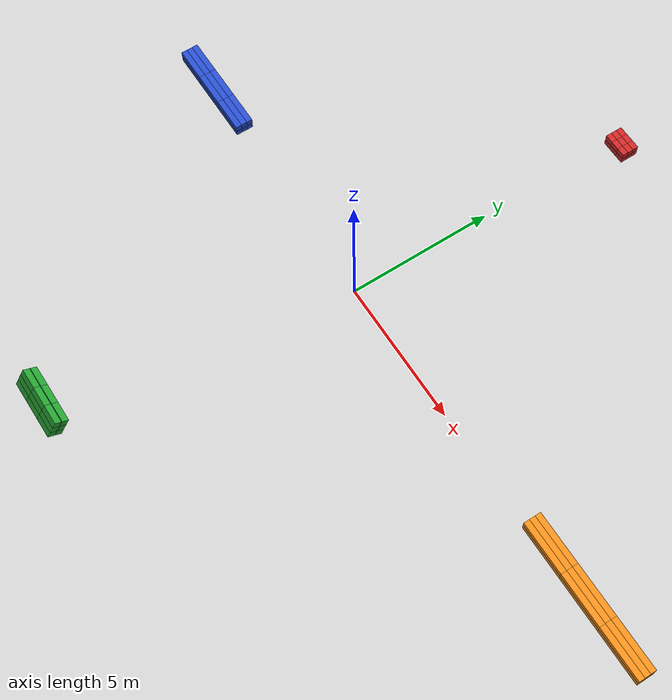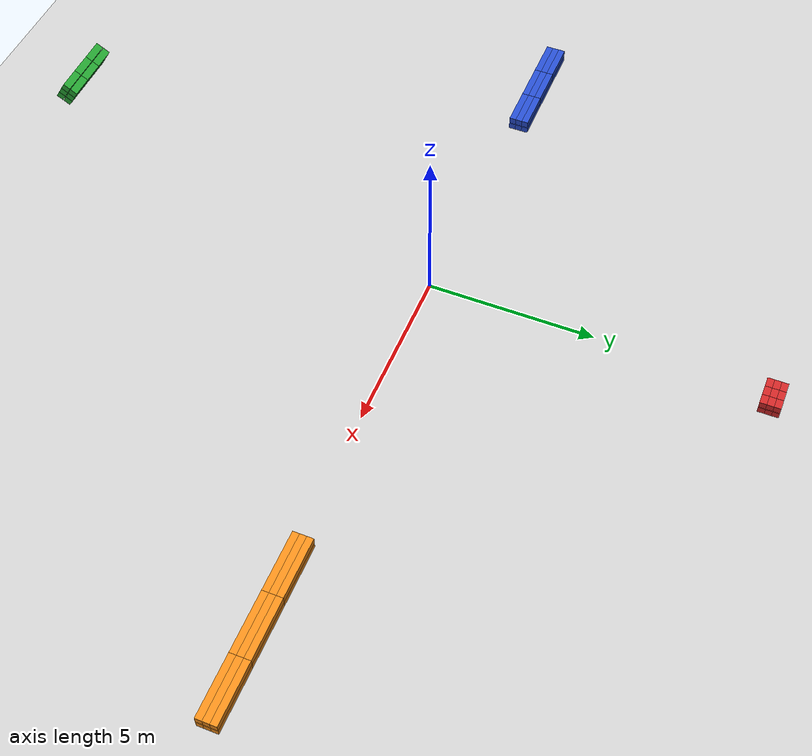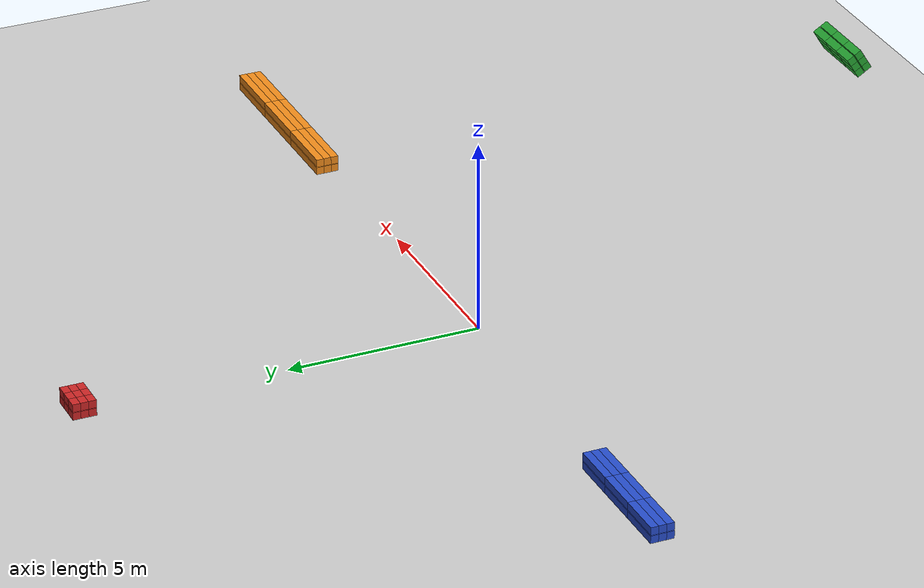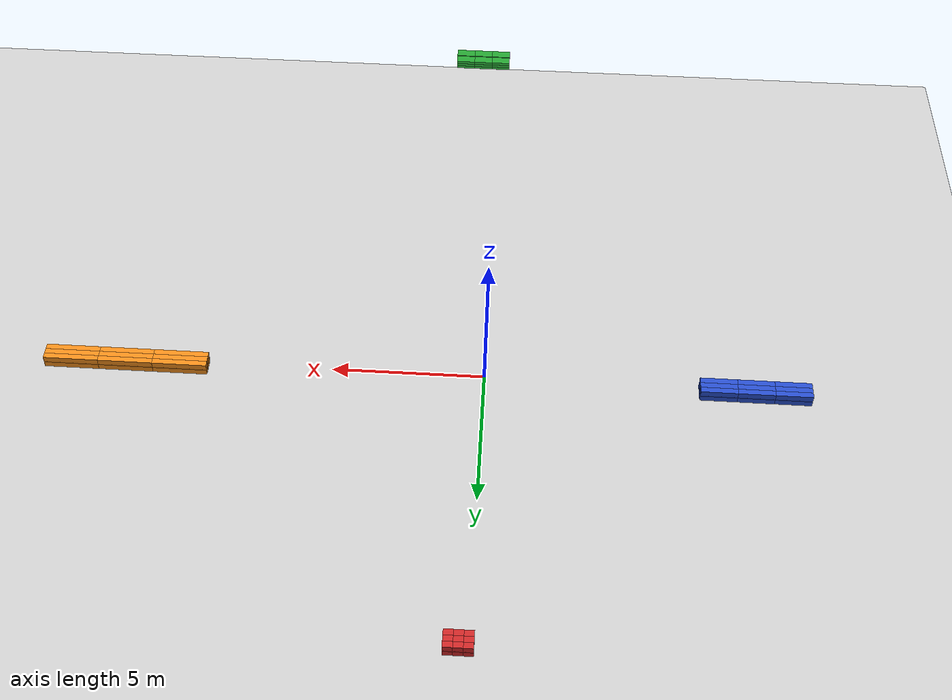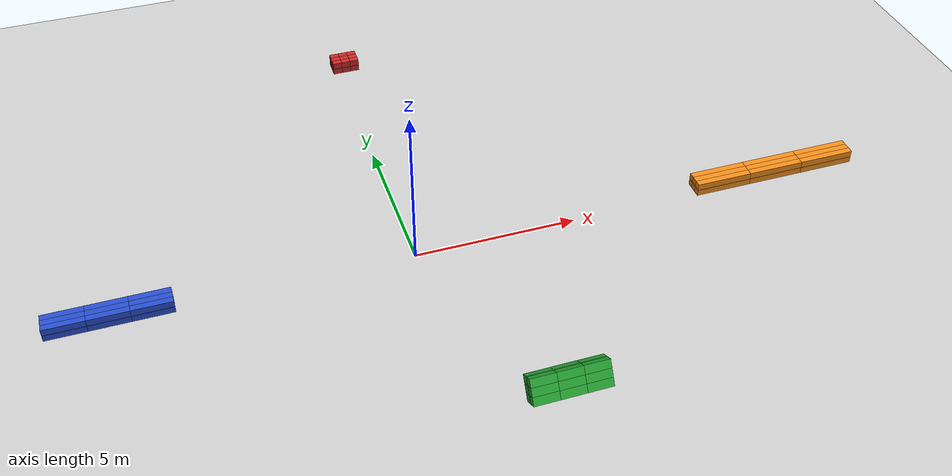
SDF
<?xml version="1.0" encoding="utf-8"?>
<!-- |    This document was autogenerated by xacro from challenge2.world.xacro         | -->
<!-- |    EDITING THIS FILE BY HAND IS NOT RECOMMENDED                                 | -->
<sdf version="1.4" xmlns:xacro="http://www.ros.org/wiki/xacro">
  <world name="default">
    <include>
      <uri>model://ground_plane</uri>
    </include>
    <include>
      <uri>model://sun</uri>
    </include>
    <model name="1.pile">
      <pose>10 0 0 0 0 0</pose>
      <self_collide>true</self_collide>
      <link name="0.brick.brick">
        <pose>0.0 0.0 0.1 0 0 0</pose>
        <inertial>
          <mass>2.0</mass>
          <inertia>
            <ixx>0.0133333333333</ixx>
            <ixy>0</ixy>
            <ixz>0</ixz>
            <iyy>0.546666666667</iyy>
            <iyz>0</iyz>
            <izz>0.546666666667</izz>
          </inertia>
        </inertial>
        <visual name="visual">
          <material>
            <script>
              <uri>gazebo.material</uri>
              <name>Gazebo/Orange</name>
            </script>
          </material>
          <geometry>
            <box>
              <size>1.8 0.2 0.2</size>
            </box>
          </geometry>
        </visual>
        <collision name="0.brick.brick">
          <geometry>
            <box>
              <size>1.8 0.2 0.2</size>
            </box>
          </geometry>
        </collision>
      </link>
      <link name="1.brick.brick">
        <pose>0.0 0.0 0.32 0 0 0</pose>
        <inertial>
          <mass>2.0</mass>
          <inertia>
            <ixx>0.0133333333333</ixx>
            <ixy>0</ixy>
            <ixz>0</ixz>
            <iyy>0.546666666667</iyy>
            <iyz>0</iyz>
            <izz>0.546666666667</izz>
          </inertia>
        </inertial>
        <visual name="visual">
          <material>
            <script>
              <uri>gazebo.material</uri>
              <name>Gazebo/Orange</name>
            </script>
          </material>
          <geometry>
            <box>
              <size>1.8 0.2 0.2</size>
            </box>
          </geometry>
        </visual>
        <collision name="1.brick.brick">
          <geometry>
            <box>
              <size>1.8 0.2 0.2</size>
            </box>
          </geometry>
        </collision>
      </link>
      <link name="2.brick.brick">
        <pose>0.0 0.2 0.1 0 0 0</pose>
        <inertial>
          <mass>2.0</mass>
          <inertia>
            <ixx>0.0133333333333</ixx>
            <ixy>0</ixy>
            <ixz>0</ixz>
            <iyy>0.546666666667</iyy>
            <iyz>0</iyz>
            <izz>0.546666666667</izz>
          </inertia>
        </inertial>
        <visual name="visual">
          <material>
            <script>
              <uri>gazebo.material</uri>
              <name>Gazebo/Orange</name>
            </script>
          </material>
          <geometry>
            <box>
              <size>1.8 0.2 0.2</size>
            </box>
          </geometry>
        </visual>
        <collision name="2.brick.brick">
          <geometry>
            <box>
              <size>1.8 0.2 0.2</size>
            </box>
          </geometry>
        </collision>
      </link>
      <link name="3.brick.brick">
        <pose>0.0 0.2 0.32 0 0 0</pose>
        <inertial>
          <mass>2.0</mass>
          <inertia>
            <ixx>0.0133333333333</ixx>
            <ixy>0</ixy>
            <ixz>0</ixz>
            <iyy>0.546666666667</iyy>
            <iyz>0</iyz>
            <izz>0.546666666667</izz>
          </inertia>
        </inertial>
        <visual name="visual">
          <material>
            <script>
              <uri>gazebo.material</uri>
              <name>Gazebo/Orange</name>
            </script>
          </material>
          <geometry>
            <box>
              <size>1.8 0.2 0.2</size>
            </box>
          </geometry>
        </visual>
        <collision name="3.brick.brick">
          <geometry>
            <box>
              <size>1.8 0.2 0.2</size>
            </box>
          </geometry>
        </collision>
      </link>
      <link name="4.brick.brick">
        <pose>0.0 0.4 0.1 0 0 0</pose>
        <inertial>
          <mass>2.0</mass>
          <inertia>
            <ixx>0.0133333333333</ixx>
            <ixy>0</ixy>
            <ixz>0</ixz>
            <iyy>0.546666666667</iyy>
            <iyz>0</iyz>
            <izz>0.546666666667</izz>
          </inertia>
        </inertial>
        <visual name="visual">
          <material>
            <script>
              <uri>gazebo.material</uri>
              <name>Gazebo/Orange</name>
            </script>
          </material>
          <geometry>
            <box>
              <size>1.8 0.2 0.2</size>
            </box>
          </geometry>
        </visual>
        <collision name="4.brick.brick">
          <geometry>
            <box>
              <size>1.8 0.2 0.2</size>
            </box>
          </geometry>
        </collision>
      </link>
      <link name="5.brick.brick">
        <pose>0.0 0.4 0.32 0 0 0</pose>
        <inertial>
          <mass>2.0</mass>
          <inertia>
            <ixx>0.0133333333333</ixx>
            <ixy>0</ixy>
            <ixz>0</ixz>
            <iyy>0.546666666667</iyy>
            <iyz>0</iyz>
            <izz>0.546666666667</izz>
          </inertia>
        </inertial>
        <visual name="visual">
          <material>
            <script>
              <uri>gazebo.material</uri>
              <name>Gazebo/Orange</name>
            </script>
          </material>
          <geometry>
            <box>
              <size>1.8 0.2 0.2</size>
            </box>
          </geometry>
        </visual>
        <collision name="5.brick.brick">
          <geometry>
            <box>
              <size>1.8 0.2 0.2</size>
            </box>
          </geometry>
        </collision>
      </link>
      <link name="6.brick.brick">
        <pose>1.8 0.0 0.1 0 0 0</pose>
        <inertial>
          <mass>2.0</mass>
          <inertia>
            <ixx>0.0133333333333</ixx>
            <ixy>0</ixy>
            <ixz>0</ixz>
            <iyy>0.546666666667</iyy>
            <iyz>0</iyz>
            <izz>0.546666666667</izz>
          </inertia>
        </inertial>
        <visual name="visual">
          <material>
            <script>
              <uri>gazebo.material</uri>
              <name>Gazebo/Orange</name>
            </script>
          </material>
          <geometry>
            <box>
              <size>1.8 0.2 0.2</size>
            </box>
          </geometry>
        </visual>
        <collision name="6.brick.brick">
          <geometry>
            <box>
              <size>1.8 0.2 0.2</size>
            </box>
          </geometry>
        </collision>
      </link>
      <link name="7.brick.brick">
        <pose>1.8 0.0 0.32 0 0 0</pose>
        <inertial>
          <mass>2.0</mass>
          <inertia>
            <ixx>0.0133333333333</ixx>
            <ixy>0</ixy>
            <ixz>0</ixz>
            <iyy>0.546666666667</iyy>
            <iyz>0</iyz>
            <izz>0.546666666667</izz>
          </inertia>
        </inertial>
        <visual name="visual">
          <material>
            <script>
              <uri>gazebo.material</uri>
              <name>Gazebo/Orange</name>
            </script>
          </material>
          <geometry>
            <box>
              <size>1.8 0.2 0.2</size>
            </box>
          </geometry>
        </visual>
        <collision name="7.brick.brick">
          <geometry>
            <box>
              <size>1.8 0.2 0.2</size>
            </box>
          </geometry>
        </collision>
      </link>
      <link name="8.brick.brick">
        <pose>1.8 0.2 0.1 0 0 0</pose>
        <inertial>
          <mass>2.0</mass>
          <inertia>
            <ixx>0.0133333333333</ixx>
            <ixy>0</ixy>
            <ixz>0</ixz>
            <iyy>0.546666666667</iyy>
            <iyz>0</iyz>
            <izz>0.546666666667</izz>
          </inertia>
        </inertial>
        <visual name="visual">
          <material>
            <script>
              <uri>gazebo.material</uri>
              <name>Gazebo/Orange</name>
            </script>
          </material>
          <geometry>
            <box>
              <size>1.8 0.2 0.2</size>
            </box>
          </geometry>
        </visual>
        <collision name="8.brick.brick">
          <geometry>
            <box>
              <size>1.8 0.2 0.2</size>
            </box>
          </geometry>
        </collision>
      </link>
      <link name="9.brick.brick">
        <pose>1.8 0.2 0.32 0 0 0</pose>
        <inertial>
          <mass>2.0</mass>
          <inertia>
            <ixx>0.0133333333333</ixx>
            <ixy>0</ixy>
            <ixz>0</ixz>
            <iyy>0.546666666667</iyy>
            <iyz>0</iyz>
            <izz>0.546666666667</izz>
          </inertia>
        </inertial>
        <visual name="visual">
          <material>
            <script>
              <uri>gazebo.material</uri>
              <name>Gazebo/Orange</name>
            </script>
          </material>
          <geometry>
            <box>
              <size>1.8 0.2 0.2</size>
            </box>
          </geometry>
        </visual>
        <collision name="9.brick.brick">
          <geometry>
            <box>
              <size>1.8 0.2 0.2</size>
            </box>
          </geometry>
        </collision>
      </link>
      <link name="10.brick.brick">
        <pose>1.8 0.4 0.1 0 0 0</pose>
        <inertial>
          <mass>2.0</mass>
          <inertia>
            <ixx>0.0133333333333</ixx>
            <ixy>0</ixy>
            <ixz>0</ixz>
            <iyy>0.546666666667</iyy>
            <iyz>0</iyz>
            <izz>0.546666666667</izz>
          </inertia>
        </inertial>
        <visual name="visual">
          <material>
            <script>
              <uri>gazebo.material</uri>
              <name>Gazebo/Orange</name>
            </script>
          </material>
          <geometry>
            <box>
              <size>1.8 0.2 0.2</size>
            </box>
          </geometry>
        </visual>
        <collision name="10.brick.brick">
          <geometry>
            <box>
              <size>1.8 0.2 0.2</size>
            </box>
          </geometry>
        </collision>
      </link>
      <link name="11.brick.brick">
        <pose>1.8 0.4 0.32 0 0 0</pose>
        <inertial>
          <mass>2.0</mass>
          <inertia>
            <ixx>0.0133333333333</ixx>
            <ixy>0</ixy>
            <ixz>0</ixz>
            <iyy>0.546666666667</iyy>
            <iyz>0</iyz>
            <izz>0.546666666667</izz>
          </inertia>
        </inertial>
        <visual name="visual">
          <material>
            <script>
              <uri>gazebo.material</uri>
              <name>Gazebo/Orange</name>
            </script>
          </material>
          <geometry>
            <box>
              <size>1.8 0.2 0.2</size>
            </box>
          </geometry>
        </visual>
        <collision name="11.brick.brick">
          <geometry>
            <box>
              <size>1.8 0.2 0.2</size>
            </box>
          </geometry>
        </collision>
      </link>
      <link name="12.brick.brick">
        <pose>3.6 0.0 0.1 0 0 0</pose>
        <inertial>
          <mass>2.0</mass>
          <inertia>
            <ixx>0.0133333333333</ixx>
            <ixy>0</ixy>
            <ixz>0</ixz>
            <iyy>0.546666666667</iyy>
            <iyz>0</iyz>
            <izz>0.546666666667</izz>
          </inertia>
        </inertial>
        <visual name="visual">
          <material>
            <script>
              <uri>gazebo.material</uri>
              <name>Gazebo/Orange</name>
            </script>
          </material>
          <geometry>
            <box>
              <size>1.8 0.2 0.2</size>
            </box>
          </geometry>
        </visual>
        <collision name="12.brick.brick">
          <geometry>
            <box>
              <size>1.8 0.2 0.2</size>
            </box>
          </geometry>
        </collision>
      </link>
      <link name="13.brick.brick">
        <pose>3.6 0.0 0.32 0 0 0</pose>
        <inertial>
          <mass>2.0</mass>
          <inertia>
            <ixx>0.0133333333333</ixx>
            <ixy>0</ixy>
            <ixz>0</ixz>
            <iyy>0.546666666667</iyy>
            <iyz>0</iyz>
            <izz>0.546666666667</izz>
          </inertia>
        </inertial>
        <visual name="visual">
          <material>
            <script>
              <uri>gazebo.material</uri>
              <name>Gazebo/Orange</name>
            </script>
          </material>
          <geometry>
            <box>
              <size>1.8 0.2 0.2</size>
            </box>
          </geometry>
        </visual>
        <collision name="13.brick.brick">
          <geometry>
            <box>
              <size>1.8 0.2 0.2</size>
            </box>
          </geometry>
        </collision>
      </link>
      <link name="14.brick.brick">
        <pose>3.6 0.2 0.1 0 0 0</pose>
        <inertial>
          <mass>2.0</mass>
          <inertia>
            <ixx>0.0133333333333</ixx>
            <ixy>0</ixy>
            <ixz>0</ixz>
            <iyy>0.546666666667</iyy>
            <iyz>0</iyz>
            <izz>0.546666666667</izz>
          </inertia>
        </inertial>
        <visual name="visual">
          <material>
            <script>
              <uri>gazebo.material</uri>
              <name>Gazebo/Orange</name>
            </script>
          </material>
          <geometry>
            <box>
              <size>1.8 0.2 0.2</size>
            </box>
          </geometry>
        </visual>
        <collision name="14.brick.brick">
          <geometry>
            <box>
              <size>1.8 0.2 0.2</size>
            </box>
          </geometry>
        </collision>
      </link>
      <link name="15.brick.brick">
        <pose>3.6 0.2 0.32 0 0 0</pose>
        <inertial>
          <mass>2.0</mass>
          <inertia>
            <ixx>0.0133333333333</ixx>
            <ixy>0</ixy>
            <ixz>0</ixz>
            <iyy>0.546666666667</iyy>
            <iyz>0</iyz>
            <izz>0.546666666667</izz>
          </inertia>
        </inertial>
        <visual name="visual">
          <material>
            <script>
              <uri>gazebo.material</uri>
              <name>Gazebo/Orange</name>
            </script>
          </material>
          <geometry>
            <box>
              <size>1.8 0.2 0.2</size>
            </box>
          </geometry>
        </visual>
        <collision name="15.brick.brick">
          <geometry>
            <box>
              <size>1.8 0.2 0.2</size>
            </box>
          </geometry>
        </collision>
      </link>
      <link name="16.brick.brick">
        <pose>3.6 0.4 0.1 0 0 0</pose>
        <inertial>
          <mass>2.0</mass>
          <inertia>
            <ixx>0.0133333333333</ixx>
            <ixy>0</ixy>
            <ixz>0</ixz>
            <iyy>0.546666666667</iyy>
            <iyz>0</iyz>
            <izz>0.546666666667</izz>
          </inertia>
        </inertial>
        <visual name="visual">
          <material>
            <script>
              <uri>gazebo.material</uri>
              <name>Gazebo/Orange</name>
            </script>
          </material>
          <geometry>
            <box>
              <size>1.8 0.2 0.2</size>
            </box>
          </geometry>
        </visual>
        <collision name="16.brick.brick">
          <geometry>
            <box>
              <size>1.8 0.2 0.2</size>
            </box>
          </geometry>
        </collision>
      </link>
      <link name="17.brick.brick">
        <pose>3.6 0.4 0.32 0 0 0</pose>
        <inertial>
          <mass>2.0</mass>
          <inertia>
            <ixx>0.0133333333333</ixx>
            <ixy>0</ixy>
            <ixz>0</ixz>
            <iyy>0.546666666667</iyy>
            <iyz>0</iyz>
            <izz>0.546666666667</izz>
          </inertia>
        </inertial>
        <visual name="visual">
          <material>
            <script>
              <uri>gazebo.material</uri>
              <name>Gazebo/Orange</name>
            </script>
          </material>
          <geometry>
            <box>
              <size>1.8 0.2 0.2</size>
            </box>
          </geometry>
        </visual>
        <collision name="17.brick.brick">
          <geometry>
            <box>
              <size>1.8 0.2 0.2</size>
            </box>
          </geometry>
        </collision>
      </link>
    </model>
    <model name="2.pile">
      <pose>-10 0 0 0 0 0</pose>
      <self_collide>true</self_collide>
      <link name="0.brick.brick">
        <pose>0.0 0.0 0.1 0 0 0</pose>
        <inertial>
          <mass>1.5</mass>
          <inertia>
            <ixx>0.01</ixx>
            <ixy>0</ixy>
            <ixz>0</ixz>
            <iyy>0.185</iyy>
            <iyz>0</iyz>
            <izz>0.185</izz>
          </inertia>
        </inertial>
        <visual name="visual">
          <material>
            <script>
              <uri>gazebo.material</uri>
              <name>Gazebo/Blue</name>
            </script>
          </material>
          <geometry>
            <box>
              <size>1.2 0.2 0.2</size>
            </box>
          </geometry>
        </visual>
        <collision name="0.brick.brick">
          <geometry>
            <box>
              <size>1.2 0.2 0.2</size>
            </box>
          </geometry>
        </collision>
      </link>
      <link name="1.brick.brick">
        <pose>0.0 0.0 0.32 0 0 0</pose>
        <inertial>
          <mass>1.5</mass>
          <inertia>
            <ixx>0.01</ixx>
            <ixy>0</ixy>
            <ixz>0</ixz>
            <iyy>0.185</iyy>
            <iyz>0</iyz>
            <izz>0.185</izz>
          </inertia>
        </inertial>
        <visual name="visual">
          <material>
            <script>
              <uri>gazebo.material</uri>
              <name>Gazebo/Blue</name>
            </script>
          </material>
          <geometry>
            <box>
              <size>1.2 0.2 0.2</size>
            </box>
          </geometry>
        </visual>
        <collision name="1.brick.brick">
          <geometry>
            <box>
              <size>1.2 0.2 0.2</size>
            </box>
          </geometry>
        </collision>
      </link>
      <link name="2.brick.brick">
        <pose>0.0 0.2 0.1 0 0 0</pose>
        <inertial>
          <mass>1.5</mass>
          <inertia>
            <ixx>0.01</ixx>
            <ixy>0</ixy>
            <ixz>0</ixz>
            <iyy>0.185</iyy>
            <iyz>0</iyz>
            <izz>0.185</izz>
          </inertia>
        </inertial>
        <visual name="visual">
          <material>
            <script>
              <uri>gazebo.material</uri>
              <name>Gazebo/Blue</name>
            </script>
          </material>
          <geometry>
            <box>
              <size>1.2 0.2 0.2</size>
            </box>
          </geometry>
        </visual>
        <collision name="2.brick.brick">
          <geometry>
            <box>
              <size>1.2 0.2 0.2</size>
            </box>
          </geometry>
        </collision>
      </link>
      <link name="3.brick.brick">
        <pose>0.0 0.2 0.32 0 0 0</pose>
        <inertial>
          <mass>1.5</mass>
          <inertia>
            <ixx>0.01</ixx>
            <ixy>0</ixy>
            <ixz>0</ixz>
            <iyy>0.185</iyy>
            <iyz>0</iyz>
            <izz>0.185</izz>
          </inertia>
        </inertial>
        <visual name="visual">
          <material>
            <script>
              <uri>gazebo.material</uri>
              <name>Gazebo/Blue</name>
            </script>
          </material>
          <geometry>
            <box>
              <size>1.2 0.2 0.2</size>
            </box>
          </geometry>
        </visual>
        <collision name="3.brick.brick">
          <geometry>
            <box>
              <size>1.2 0.2 0.2</size>
            </box>
          </geometry>
        </collision>
      </link>
      <link name="4.brick.brick">
        <pose>0.0 0.4 0.1 0 0 0</pose>
        <inertial>
          <mass>1.5</mass>
          <inertia>
            <ixx>0.01</ixx>
            <ixy>0</ixy>
            <ixz>0</ixz>
            <iyy>0.185</iyy>
            <iyz>0</iyz>
            <izz>0.185</izz>
          </inertia>
        </inertial>
        <visual name="visual">
          <material>
            <script>
              <uri>gazebo.material</uri>
              <name>Gazebo/Blue</name>
            </script>
          </material>
          <geometry>
            <box>
              <size>1.2 0.2 0.2</size>
            </box>
          </geometry>
        </visual>
        <collision name="4.brick.brick">
          <geometry>
            <box>
              <size>1.2 0.2 0.2</size>
            </box>
          </geometry>
        </collision>
      </link>
      <link name="5.brick.brick">
        <pose>0.0 0.4 0.32 0 0 0</pose>
        <inertial>
          <mass>1.5</mass>
          <inertia>
            <ixx>0.01</ixx>
            <ixy>0</ixy>
            <ixz>0</ixz>
            <iyy>0.185</iyy>
            <iyz>0</iyz>
            <izz>0.185</izz>
          </inertia>
        </inertial>
        <visual name="visual">
          <material>
            <script>
              <uri>gazebo.material</uri>
              <name>Gazebo/Blue</name>
            </script>
          </material>
          <geometry>
            <box>
              <size>1.2 0.2 0.2</size>
            </box>
          </geometry>
        </visual>
        <collision name="5.brick.brick">
          <geometry>
            <box>
              <size>1.2 0.2 0.2</size>
            </box>
          </geometry>
        </collision>
      </link>
      <link name="6.brick.brick">
        <pose>1.2 0.0 0.1 0 0 0</pose>
        <inertial>
          <mass>1.5</mass>
          <inertia>
            <ixx>0.01</ixx>
            <ixy>0</ixy>
            <ixz>0</ixz>
            <iyy>0.185</iyy>
            <iyz>0</iyz>
            <izz>0.185</izz>
          </inertia>
        </inertial>
        <visual name="visual">
          <material>
            <script>
              <uri>gazebo.material</uri>
              <name>Gazebo/Blue</name>
            </script>
          </material>
          <geometry>
            <box>
              <size>1.2 0.2 0.2</size>
            </box>
          </geometry>
        </visual>
        <collision name="6.brick.brick">
          <geometry>
            <box>
              <size>1.2 0.2 0.2</size>
            </box>
          </geometry>
        </collision>
      </link>
      <link name="7.brick.brick">
        <pose>1.2 0.0 0.32 0 0 0</pose>
        <inertial>
          <mass>1.5</mass>
          <inertia>
            <ixx>0.01</ixx>
            <ixy>0</ixy>
            <ixz>0</ixz>
            <iyy>0.185</iyy>
            <iyz>0</iyz>
            <izz>0.185</izz>
          </inertia>
        </inertial>
        <visual name="visual">
          <material>
            <script>
              <uri>gazebo.material</uri>
              <name>Gazebo/Blue</name>
            </script>
          </material>
          <geometry>
            <box>
              <size>1.2 0.2 0.2</size>
            </box>
          </geometry>
        </visual>
        <collision name="7.brick.brick">
          <geometry>
            <box>
              <size>1.2 0.2 0.2</size>
            </box>
          </geometry>
        </collision>
      </link>
      <link name="8.brick.brick">
        <pose>1.2 0.2 0.1 0 0 0</pose>
        <inertial>
          <mass>1.5</mass>
          <inertia>
            <ixx>0.01</ixx>
            <ixy>0</ixy>
            <ixz>0</ixz>
            <iyy>0.185</iyy>
            <iyz>0</iyz>
            <izz>0.185</izz>
          </inertia>
        </inertial>
        <visual name="visual">
          <material>
            <script>
              <uri>gazebo.material</uri>
              <name>Gazebo/Blue</name>
            </script>
          </material>
          <geometry>
            <box>
              <size>1.2 0.2 0.2</size>
            </box>
          </geometry>
        </visual>
        <collision name="8.brick.brick">
          <geometry>
            <box>
              <size>1.2 0.2 0.2</size>
            </box>
          </geometry>
        </collision>
      </link>
      <link name="9.brick.brick">
        <pose>1.2 0.2 0.32 0 0 0</pose>
        <inertial>
          <mass>1.5</mass>
          <inertia>
            <ixx>0.01</ixx>
            <ixy>0</ixy>
            <ixz>0</ixz>
            <iyy>0.185</iyy>
            <iyz>0</iyz>
            <izz>0.185</izz>
          </inertia>
        </inertial>
        <visual name="visual">
          <material>
            <script>
              <uri>gazebo.material</uri>
              <name>Gazebo/Blue</name>
            </script>
          </material>
          <geometry>
            <box>
              <size>1.2 0.2 0.2</size>
            </box>
          </geometry>
        </visual>
        <collision name="9.brick.brick">
          <geometry>
            <box>
              <size>1.2 0.2 0.2</size>
            </box>
          </geometry>
        </collision>
      </link>
      <link name="10.brick.brick">
        <pose>1.2 0.4 0.1 0 0 0</pose>
        <inertial>
          <mass>1.5</mass>
          <inertia>
            <ixx>0.01</ixx>
            <ixy>0</ixy>
            <ixz>0</ixz>
            <iyy>0.185</iyy>
            <iyz>0</iyz>
            <izz>0.185</izz>
          </inertia>
        </inertial>
        <visual name="visual">
          <material>
            <script>
              <uri>gazebo.material</uri>
              <name>Gazebo/Blue</name>
            </script>
          </material>
          <geometry>
            <box>
              <size>1.2 0.2 0.2</size>
            </box>
          </geometry>
        </visual>
        <collision name="10.brick.brick">
          <geometry>
            <box>
              <size>1.2 0.2 0.2</size>
            </box>
          </geometry>
        </collision>
      </link>
      <link name="11.brick.brick">
        <pose>1.2 0.4 0.32 0 0 0</pose>
        <inertial>
          <mass>1.5</mass>
          <inertia>
            <ixx>0.01</ixx>
            <ixy>0</ixy>
            <ixz>0</ixz>
            <iyy>0.185</iyy>
            <iyz>0</iyz>
            <izz>0.185</izz>
          </inertia>
        </inertial>
        <visual name="visual">
          <material>
            <script>
              <uri>gazebo.material</uri>
              <name>Gazebo/Blue</name>
            </script>
          </material>
          <geometry>
            <box>
              <size>1.2 0.2 0.2</size>
            </box>
          </geometry>
        </visual>
        <collision name="11.brick.brick">
          <geometry>
            <box>
              <size>1.2 0.2 0.2</size>
            </box>
          </geometry>
        </collision>
      </link>
      <link name="12.brick.brick">
        <pose>2.4 0.0 0.1 0 0 0</pose>
        <inertial>
          <mass>1.5</mass>
          <inertia>
            <ixx>0.01</ixx>
            <ixy>0</ixy>
            <ixz>0</ixz>
            <iyy>0.185</iyy>
            <iyz>0</iyz>
            <izz>0.185</izz>
          </inertia>
        </inertial>
        <visual name="visual">
          <material>
            <script>
              <uri>gazebo.material</uri>
              <name>Gazebo/Blue</name>
            </script>
          </material>
          <geometry>
            <box>
              <size>1.2 0.2 0.2</size>
            </box>
          </geometry>
        </visual>
        <collision name="12.brick.brick">
          <geometry>
            <box>
              <size>1.2 0.2 0.2</size>
            </box>
          </geometry>
        </collision>
      </link>
      <link name="13.brick.brick">
        <pose>2.4 0.0 0.32 0 0 0</pose>
        <inertial>
          <mass>1.5</mass>
          <inertia>
            <ixx>0.01</ixx>
            <ixy>0</ixy>
            <ixz>0</ixz>
            <iyy>0.185</iyy>
            <iyz>0</iyz>
            <izz>0.185</izz>
          </inertia>
        </inertial>
        <visual name="visual">
          <material>
            <script>
              <uri>gazebo.material</uri>
              <name>Gazebo/Blue</name>
            </script>
          </material>
          <geometry>
            <box>
              <size>1.2 0.2 0.2</size>
            </box>
          </geometry>
        </visual>
        <collision name="13.brick.brick">
          <geometry>
            <box>
              <size>1.2 0.2 0.2</size>
            </box>
          </geometry>
        </collision>
      </link>
      <link name="14.brick.brick">
        <pose>2.4 0.2 0.1 0 0 0</pose>
        <inertial>
          <mass>1.5</mass>
          <inertia>
            <ixx>0.01</ixx>
            <ixy>0</ixy>
            <ixz>0</ixz>
            <iyy>0.185</iyy>
            <iyz>0</iyz>
            <izz>0.185</izz>
          </inertia>
        </inertial>
        <visual name="visual">
          <material>
            <script>
              <uri>gazebo.material</uri>
              <name>Gazebo/Blue</name>
            </script>
          </material>
          <geometry>
            <box>
              <size>1.2 0.2 0.2</size>
            </box>
          </geometry>
        </visual>
        <collision name="14.brick.brick">
          <geometry>
            <box>
              <size>1.2 0.2 0.2</size>
            </box>
          </geometry>
        </collision>
      </link>
      <link name="15.brick.brick">
        <pose>2.4 0.2 0.32 0 0 0</pose>
        <inertial>
          <mass>1.5</mass>
          <inertia>
            <ixx>0.01</ixx>
            <ixy>0</ixy>
            <ixz>0</ixz>
            <iyy>0.185</iyy>
            <iyz>0</iyz>
            <izz>0.185</izz>
          </inertia>
        </inertial>
        <visual name="visual">
          <material>
            <script>
              <uri>gazebo.material</uri>
              <name>Gazebo/Blue</name>
            </script>
          </material>
          <geometry>
            <box>
              <size>1.2 0.2 0.2</size>
            </box>
          </geometry>
        </visual>
        <collision name="15.brick.brick">
          <geometry>
            <box>
              <size>1.2 0.2 0.2</size>
            </box>
          </geometry>
        </collision>
      </link>
      <link name="16.brick.brick">
        <pose>2.4 0.4 0.1 0 0 0</pose>
        <inertial>
          <mass>1.5</mass>
          <inertia>
            <ixx>0.01</ixx>
            <ixy>0</ixy>
            <ixz>0</ixz>
            <iyy>0.185</iyy>
            <iyz>0</iyz>
            <izz>0.185</izz>
          </inertia>
        </inertial>
        <visual name="visual">
          <material>
            <script>
              <uri>gazebo.material</uri>
              <name>Gazebo/Blue</name>
            </script>
          </material>
          <geometry>
            <box>
              <size>1.2 0.2 0.2</size>
            </box>
          </geometry>
        </visual>
        <collision name="16.brick.brick">
          <geometry>
            <box>
              <size>1.2 0.2 0.2</size>
            </box>
          </geometry>
        </collision>
      </link>
      <link name="17.brick.brick">
        <pose>2.4 0.4 0.32 0 0 0</pose>
        <inertial>
          <mass>1.5</mass>
          <inertia>
            <ixx>0.01</ixx>
            <ixy>0</ixy>
            <ixz>0</ixz>
            <iyy>0.185</iyy>
            <iyz>0</iyz>
            <izz>0.185</izz>
          </inertia>
        </inertial>
        <visual name="visual">
          <material>
            <script>
              <uri>gazebo.material</uri>
              <name>Gazebo/Blue</name>
            </script>
          </material>
          <geometry>
            <box>
              <size>1.2 0.2 0.2</size>
            </box>
          </geometry>
        </visual>
        <collision name="17.brick.brick">
          <geometry>
            <box>
              <size>1.2 0.2 0.2</size>
            </box>
          </geometry>
        </collision>
      </link>
    </model>
    <model name="3.pile">
      <pose>0 -10 5 45 0 0</pose>
      <self_collide>true</self_collide>
      <link name="0.brick.brick">
        <pose>0.0 0.0 0.1 0 0 0</pose>
        <inertial>
          <mass>1.0</mass>
          <inertia>
            <ixx>0.00666666666667</ixx>
            <ixy>0</ixy>
            <ixz>0</ixz>
            <iyy>0.0333333333333</iyy>
            <iyz>0</iyz>
            <izz>0.0333333333333</izz>
          </inertia>
        </inertial>
        <visual name="visual">
          <material>
            <script>
              <uri>gazebo.material</uri>
              <name>Gazebo/Green</name>
            </script>
          </material>
          <geometry>
            <box>
              <size>0.6 0.2 0.2</size>
            </box>
          </geometry>
        </visual>
        <collision name="0.brick.brick">
          <geometry>
            <box>
              <size>0.6 0.2 0.2</size>
            </box>
          </geometry>
        </collision>
      </link>
      <link name="1.brick.brick">
        <pose>0.0 0.0 0.32 0 0 0</pose>
        <inertial>
          <mass>1.0</mass>
          <inertia>
            <ixx>0.00666666666667</ixx>
            <ixy>0</ixy>
            <ixz>0</ixz>
            <iyy>0.0333333333333</iyy>
            <iyz>0</iyz>
            <izz>0.0333333333333</izz>
          </inertia>
        </inertial>
        <visual name="visual">
          <material>
            <script>
              <uri>gazebo.material</uri>
              <name>Gazebo/Green</name>
            </script>
          </material>
          <geometry>
            <box>
              <size>0.6 0.2 0.2</size>
            </box>
          </geometry>
        </visual>
        <collision name="1.brick.brick">
          <geometry>
            <box>
              <size>0.6 0.2 0.2</size>
            </box>
          </geometry>
        </collision>
      </link>
      <link name="2.brick.brick">
        <pose>0.0 0.2 0.1 0 0 0</pose>
        <inertial>
          <mass>1.0</mass>
          <inertia>
            <ixx>0.00666666666667</ixx>
            <ixy>0</ixy>
            <ixz>0</ixz>
            <iyy>0.0333333333333</iyy>
            <iyz>0</iyz>
            <izz>0.0333333333333</izz>
          </inertia>
        </inertial>
        <visual name="visual">
          <material>
            <script>
              <uri>gazebo.material</uri>
              <name>Gazebo/Green</name>
            </script>
          </material>
          <geometry>
            <box>
              <size>0.6 0.2 0.2</size>
            </box>
          </geometry>
        </visual>
        <collision name="2.brick.brick">
          <geometry>
            <box>
              <size>0.6 0.2 0.2</size>
            </box>
          </geometry>
        </collision>
      </link>
      <link name="3.brick.brick">
        <pose>0.0 0.2 0.32 0 0 0</pose>
        <inertial>
          <mass>1.0</mass>
          <inertia>
            <ixx>0.00666666666667</ixx>
            <ixy>0</ixy>
            <ixz>0</ixz>
            <iyy>0.0333333333333</iyy>
            <iyz>0</iyz>
            <izz>0.0333333333333</izz>
          </inertia>
        </inertial>
        <visual name="visual">
          <material>
            <script>
              <uri>gazebo.material</uri>
              <name>Gazebo/Green</name>
            </script>
          </material>
          <geometry>
            <box>
              <size>0.6 0.2 0.2</size>
            </box>
          </geometry>
        </visual>
        <collision name="3.brick.brick">
          <geometry>
            <box>
              <size>0.6 0.2 0.2</size>
            </box>
          </geometry>
        </collision>
      </link>
      <link name="4.brick.brick">
        <pose>0.0 0.4 0.1 0 0 0</pose>
        <inertial>
          <mass>1.0</mass>
          <inertia>
            <ixx>0.00666666666667</ixx>
            <ixy>0</ixy>
            <ixz>0</ixz>
            <iyy>0.0333333333333</iyy>
            <iyz>0</iyz>
            <izz>0.0333333333333</izz>
          </inertia>
        </inertial>
        <visual name="visual">
          <material>
            <script>
              <uri>gazebo.material</uri>
              <name>Gazebo/Green</name>
            </script>
          </material>
          <geometry>
            <box>
              <size>0.6 0.2 0.2</size>
            </box>
          </geometry>
        </visual>
        <collision name="4.brick.brick">
          <geometry>
            <box>
              <size>0.6 0.2 0.2</size>
            </box>
          </geometry>
        </collision>
      </link>
      <link name="5.brick.brick">
        <pose>0.0 0.4 0.32 0 0 0</pose>
        <inertial>
          <mass>1.0</mass>
          <inertia>
            <ixx>0.00666666666667</ixx>
            <ixy>0</ixy>
            <ixz>0</ixz>
            <iyy>0.0333333333333</iyy>
            <iyz>0</iyz>
            <izz>0.0333333333333</izz>
          </inertia>
        </inertial>
        <visual name="visual">
          <material>
            <script>
              <uri>gazebo.material</uri>
              <name>Gazebo/Green</name>
            </script>
          </material>
          <geometry>
            <box>
              <size>0.6 0.2 0.2</size>
            </box>
          </geometry>
        </visual>
        <collision name="5.brick.brick">
          <geometry>
            <box>
              <size>0.6 0.2 0.2</size>
            </box>
          </geometry>
        </collision>
      </link>
      <link name="6.brick.brick">
        <pose>0.6 0.0 0.1 0 0 0</pose>
        <inertial>
          <mass>1.0</mass>
          <inertia>
            <ixx>0.00666666666667</ixx>
            <ixy>0</ixy>
            <ixz>0</ixz>
            <iyy>0.0333333333333</iyy>
            <iyz>0</iyz>
            <izz>0.0333333333333</izz>
          </inertia>
        </inertial>
        <visual name="visual">
          <material>
            <script>
              <uri>gazebo.material</uri>
              <name>Gazebo/Green</name>
            </script>
          </material>
          <geometry>
            <box>
              <size>0.6 0.2 0.2</size>
            </box>
          </geometry>
        </visual>
        <collision name="6.brick.brick">
          <geometry>
            <box>
              <size>0.6 0.2 0.2</size>
            </box>
          </geometry>
        </collision>
      </link>
      <link name="7.brick.brick">
        <pose>0.6 0.0 0.32 0 0 0</pose>
        <inertial>
          <mass>1.0</mass>
          <inertia>
            <ixx>0.00666666666667</ixx>
            <ixy>0</ixy>
            <ixz>0</ixz>
            <iyy>0.0333333333333</iyy>
            <iyz>0</iyz>
            <izz>0.0333333333333</izz>
          </inertia>
        </inertial>
        <visual name="visual">
          <material>
            <script>
              <uri>gazebo.material</uri>
              <name>Gazebo/Green</name>
            </script>
          </material>
          <geometry>
            <box>
              <size>0.6 0.2 0.2</size>
            </box>
          </geometry>
        </visual>
        <collision name="7.brick.brick">
          <geometry>
            <box>
              <size>0.6 0.2 0.2</size>
            </box>
          </geometry>
        </collision>
      </link>
      <link name="8.brick.brick">
        <pose>0.6 0.2 0.1 0 0 0</pose>
        <inertial>
          <mass>1.0</mass>
          <inertia>
            <ixx>0.00666666666667</ixx>
            <ixy>0</ixy>
            <ixz>0</ixz>
            <iyy>0.0333333333333</iyy>
            <iyz>0</iyz>
            <izz>0.0333333333333</izz>
          </inertia>
        </inertial>
        <visual name="visual">
          <material>
            <script>
              <uri>gazebo.material</uri>
              <name>Gazebo/Green</name>
            </script>
          </material>
          <geometry>
            <box>
              <size>0.6 0.2 0.2</size>
            </box>
          </geometry>
        </visual>
        <collision name="8.brick.brick">
          <geometry>
            <box>
              <size>0.6 0.2 0.2</size>
            </box>
          </geometry>
        </collision>
      </link>
      <link name="9.brick.brick">
        <pose>0.6 0.2 0.32 0 0 0</pose>
        <inertial>
          <mass>1.0</mass>
          <inertia>
            <ixx>0.00666666666667</ixx>
            <ixy>0</ixy>
            <ixz>0</ixz>
            <iyy>0.0333333333333</iyy>
            <iyz>0</iyz>
            <izz>0.0333333333333</izz>
          </inertia>
        </inertial>
        <visual name="visual">
          <material>
            <script>
              <uri>gazebo.material</uri>
              <name>Gazebo/Green</name>
            </script>
          </material>
          <geometry>
            <box>
              <size>0.6 0.2 0.2</size>
            </box>
          </geometry>
        </visual>
        <collision name="9.brick.brick">
          <geometry>
            <box>
              <size>0.6 0.2 0.2</size>
            </box>
          </geometry>
        </collision>
      </link>
      <link name="10.brick.brick">
        <pose>0.6 0.4 0.1 0 0 0</pose>
        <inertial>
          <mass>1.0</mass>
          <inertia>
            <ixx>0.00666666666667</ixx>
            <ixy>0</ixy>
            <ixz>0</ixz>
            <iyy>0.0333333333333</iyy>
            <iyz>0</iyz>
            <izz>0.0333333333333</izz>
          </inertia>
        </inertial>
        <visual name="visual">
          <material>
            <script>
              <uri>gazebo.material</uri>
              <name>Gazebo/Green</name>
            </script>
          </material>
          <geometry>
            <box>
              <size>0.6 0.2 0.2</size>
            </box>
          </geometry>
        </visual>
        <collision name="10.brick.brick">
          <geometry>
            <box>
              <size>0.6 0.2 0.2</size>
            </box>
          </geometry>
        </collision>
      </link>
      <link name="11.brick.brick">
        <pose>0.6 0.4 0.32 0 0 0</pose>
        <inertial>
          <mass>1.0</mass>
          <inertia>
            <ixx>0.00666666666667</ixx>
            <ixy>0</ixy>
            <ixz>0</ixz>
            <iyy>0.0333333333333</iyy>
            <iyz>0</iyz>
            <izz>0.0333333333333</izz>
          </inertia>
        </inertial>
        <visual name="visual">
          <material>
            <script>
              <uri>gazebo.material</uri>
              <name>Gazebo/Green</name>
            </script>
          </material>
          <geometry>
            <box>
              <size>0.6 0.2 0.2</size>
            </box>
          </geometry>
        </visual>
        <collision name="11.brick.brick">
          <geometry>
            <box>
              <size>0.6 0.2 0.2</size>
            </box>
          </geometry>
        </collision>
      </link>
      <link name="12.brick.brick">
        <pose>1.2 0.0 0.1 0 0 0</pose>
        <inertial>
          <mass>1.0</mass>
          <inertia>
            <ixx>0.00666666666667</ixx>
            <ixy>0</ixy>
            <ixz>0</ixz>
            <iyy>0.0333333333333</iyy>
            <iyz>0</iyz>
            <izz>0.0333333333333</izz>
          </inertia>
        </inertial>
        <visual name="visual">
          <material>
            <script>
              <uri>gazebo.material</uri>
              <name>Gazebo/Green</name>
            </script>
          </material>
          <geometry>
            <box>
              <size>0.6 0.2 0.2</size>
            </box>
          </geometry>
        </visual>
        <collision name="12.brick.brick">
          <geometry>
            <box>
              <size>0.6 0.2 0.2</size>
            </box>
          </geometry>
        </collision>
      </link>
      <link name="13.brick.brick">
        <pose>1.2 0.0 0.32 0 0 0</pose>
        <inertial>
          <mass>1.0</mass>
          <inertia>
            <ixx>0.00666666666667</ixx>
            <ixy>0</ixy>
            <ixz>0</ixz>
            <iyy>0.0333333333333</iyy>
            <iyz>0</iyz>
            <izz>0.0333333333333</izz>
          </inertia>
        </inertial>
        <visual name="visual">
          <material>
            <script>
              <uri>gazebo.material</uri>
              <name>Gazebo/Green</name>
            </script>
          </material>
          <geometry>
            <box>
              <size>0.6 0.2 0.2</size>
            </box>
          </geometry>
        </visual>
        <collision name="13.brick.brick">
          <geometry>
            <box>
              <size>0.6 0.2 0.2</size>
            </box>
          </geometry>
        </collision>
      </link>
      <link name="14.brick.brick">
        <pose>1.2 0.2 0.1 0 0 0</pose>
        <inertial>
          <mass>1.0</mass>
          <inertia>
            <ixx>0.00666666666667</ixx>
            <ixy>0</ixy>
            <ixz>0</ixz>
            <iyy>0.0333333333333</iyy>
            <iyz>0</iyz>
            <izz>0.0333333333333</izz>
          </inertia>
        </inertial>
        <visual name="visual">
          <material>
            <script>
              <uri>gazebo.material</uri>
              <name>Gazebo/Green</name>
            </script>
          </material>
          <geometry>
            <box>
              <size>0.6 0.2 0.2</size>
            </box>
          </geometry>
        </visual>
        <collision name="14.brick.brick">
          <geometry>
            <box>
              <size>0.6 0.2 0.2</size>
            </box>
          </geometry>
        </collision>
      </link>
      <link name="15.brick.brick">
        <pose>1.2 0.2 0.32 0 0 0</pose>
        <inertial>
          <mass>1.0</mass>
          <inertia>
            <ixx>0.00666666666667</ixx>
            <ixy>0</ixy>
            <ixz>0</ixz>
            <iyy>0.0333333333333</iyy>
            <iyz>0</iyz>
            <izz>0.0333333333333</izz>
          </inertia>
        </inertial>
        <visual name="visual">
          <material>
            <script>
              <uri>gazebo.material</uri>
              <name>Gazebo/Green</name>
            </script>
          </material>
          <geometry>
            <box>
              <size>0.6 0.2 0.2</size>
            </box>
          </geometry>
        </visual>
        <collision name="15.brick.brick">
          <geometry>
            <box>
              <size>0.6 0.2 0.2</size>
            </box>
          </geometry>
        </collision>
      </link>
      <link name="16.brick.brick">
        <pose>1.2 0.4 0.1 0 0 0</pose>
        <inertial>
          <mass>1.0</mass>
          <inertia>
            <ixx>0.00666666666667</ixx>
            <ixy>0</ixy>
            <ixz>0</ixz>
            <iyy>0.0333333333333</iyy>
            <iyz>0</iyz>
            <izz>0.0333333333333</izz>
          </inertia>
        </inertial>
        <visual name="visual">
          <material>
            <script>
              <uri>gazebo.material</uri>
              <name>Gazebo/Green</name>
            </script>
          </material>
          <geometry>
            <box>
              <size>0.6 0.2 0.2</size>
            </box>
          </geometry>
        </visual>
        <collision name="16.brick.brick">
          <geometry>
            <box>
              <size>0.6 0.2 0.2</size>
            </box>
          </geometry>
        </collision>
      </link>
      <link name="17.brick.brick">
        <pose>1.2 0.4 0.32 0 0 0</pose>
        <inertial>
          <mass>1.0</mass>
          <inertia>
            <ixx>0.00666666666667</ixx>
            <ixy>0</ixy>
            <ixz>0</ixz>
            <iyy>0.0333333333333</iyy>
            <iyz>0</iyz>
            <izz>0.0333333333333</izz>
          </inertia>
        </inertial>
        <visual name="visual">
          <material>
            <script>
              <uri>gazebo.material</uri>
              <name>Gazebo/Green</name>
            </script>
          </material>
          <geometry>
            <box>
              <size>0.6 0.2 0.2</size>
            </box>
          </geometry>
        </visual>
        <collision name="17.brick.brick">
          <geometry>
            <box>
              <size>0.6 0.2 0.2</size>
            </box>
          </geometry>
        </collision>
      </link>
    </model>
    <model name="4.pile">
      <pose>0 10 0 0 0 0</pose>
      <self_collide>true</self_collide>
      <link name="0.brick.brick">
        <pose>0.0 0.0 0.1 0 0 0</pose>
        <inertial>
          <mass>1.0</mass>
          <inertia>
            <ixx>0.00666666666667</ixx>
            <ixy>0</ixy>
            <ixz>0</ixz>
            <iyy>0.0108333333333</iyy>
            <iyz>0</iyz>
            <izz>0.0108333333333</izz>
          </inertia>
        </inertial>
        <visual name="visual">
          <material>
            <script>
              <uri>gazebo.material</uri>
              <name>Gazebo/Red</name>
            </script>
          </material>
          <geometry>
            <box>
              <size>0.3 0.2 0.2</size>
            </box>
          </geometry>
        </visual>
        <collision name="0.brick.brick">
          <geometry>
            <box>
              <size>0.3 0.2 0.2</size>
            </box>
          </geometry>
        </collision>
      </link>
      <link name="1.brick.brick">
        <pose>0.0 0.0 0.32 0 0 0</pose>
        <inertial>
          <mass>1.0</mass>
          <inertia>
            <ixx>0.00666666666667</ixx>
            <ixy>0</ixy>
            <ixz>0</ixz>
            <iyy>0.0108333333333</iyy>
            <iyz>0</iyz>
            <izz>0.0108333333333</izz>
          </inertia>
        </inertial>
        <visual name="visual">
          <material>
            <script>
              <uri>gazebo.material</uri>
              <name>Gazebo/Red</name>
            </script>
          </material>
          <geometry>
            <box>
              <size>0.3 0.2 0.2</size>
            </box>
          </geometry>
        </visual>
        <collision name="1.brick.brick">
          <geometry>
            <box>
              <size>0.3 0.2 0.2</size>
            </box>
          </geometry>
        </collision>
      </link>
      <link name="2.brick.brick">
        <pose>0.0 0.2 0.1 0 0 0</pose>
        <inertial>
          <mass>1.0</mass>
          <inertia>
            <ixx>0.00666666666667</ixx>
            <ixy>0</ixy>
            <ixz>0</ixz>
            <iyy>0.0108333333333</iyy>
            <iyz>0</iyz>
            <izz>0.0108333333333</izz>
          </inertia>
        </inertial>
        <visual name="visual">
          <material>
            <script>
              <uri>gazebo.material</uri>
              <name>Gazebo/Red</name>
            </script>
          </material>
          <geometry>
            <box>
              <size>0.3 0.2 0.2</size>
            </box>
          </geometry>
        </visual>
        <collision name="2.brick.brick">
          <geometry>
            <box>
              <size>0.3 0.2 0.2</size>
            </box>
          </geometry>
        </collision>
      </link>
      <link name="3.brick.brick">
        <pose>0.0 0.2 0.32 0 0 0</pose>
        <inertial>
          <mass>1.0</mass>
          <inertia>
            <ixx>0.00666666666667</ixx>
            <ixy>0</ixy>
            <ixz>0</ixz>
            <iyy>0.0108333333333</iyy>
            <iyz>0</iyz>
            <izz>0.0108333333333</izz>
          </inertia>
        </inertial>
        <visual name="visual">
          <material>
            <script>
              <uri>gazebo.material</uri>
              <name>Gazebo/Red</name>
            </script>
          </material>
          <geometry>
            <box>
              <size>0.3 0.2 0.2</size>
            </box>
          </geometry>
        </visual>
        <collision name="3.brick.brick">
          <geometry>
            <box>
              <size>0.3 0.2 0.2</size>
            </box>
          </geometry>
        </collision>
      </link>
      <link name="4.brick.brick">
        <pose>0.0 0.4 0.1 0 0 0</pose>
        <inertial>
          <mass>1.0</mass>
          <inertia>
            <ixx>0.00666666666667</ixx>
            <ixy>0</ixy>
            <ixz>0</ixz>
            <iyy>0.0108333333333</iyy>
            <iyz>0</iyz>
            <izz>0.0108333333333</izz>
          </inertia>
        </inertial>
        <visual name="visual">
          <material>
            <script>
              <uri>gazebo.material</uri>
              <name>Gazebo/Red</name>
            </script>
          </material>
          <geometry>
            <box>
              <size>0.3 0.2 0.2</size>
            </box>
          </geometry>
        </visual>
        <collision name="4.brick.brick">
          <geometry>
            <box>
              <size>0.3 0.2 0.2</size>
            </box>
          </geometry>
        </collision>
      </link>
      <link name="5.brick.brick">
        <pose>0.0 0.4 0.32 0 0 0</pose>
        <inertial>
          <mass>1.0</mass>
          <inertia>
            <ixx>0.00666666666667</ixx>
            <ixy>0</ixy>
            <ixz>0</ixz>
            <iyy>0.0108333333333</iyy>
            <iyz>0</iyz>
            <izz>0.0108333333333</izz>
          </inertia>
        </inertial>
        <visual name="visual">
          <material>
            <script>
              <uri>gazebo.material</uri>
              <name>Gazebo/Red</name>
            </script>
          </material>
          <geometry>
            <box>
              <size>0.3 0.2 0.2</size>
            </box>
          </geometry>
        </visual>
        <collision name="5.brick.brick">
          <geometry>
            <box>
              <size>0.3 0.2 0.2</size>
            </box>
          </geometry>
        </collision>
      </link>
      <link name="6.brick.brick">
        <pose>0.3 0.0 0.1 0 0 0</pose>
        <inertial>
          <mass>1.0</mass>
          <inertia>
            <ixx>0.00666666666667</ixx>
            <ixy>0</ixy>
            <ixz>0</ixz>
            <iyy>0.0108333333333</iyy>
            <iyz>0</iyz>
            <izz>0.0108333333333</izz>
          </inertia>
        </inertial>
        <visual name="visual">
          <material>
            <script>
              <uri>gazebo.material</uri>
              <name>Gazebo/Red</name>
            </script>
          </material>
          <geometry>
            <box>
              <size>0.3 0.2 0.2</size>
            </box>
          </geometry>
        </visual>
        <collision name="6.brick.brick">
          <geometry>
            <box>
              <size>0.3 0.2 0.2</size>
            </box>
          </geometry>
        </collision>
      </link>
      <link name="7.brick.brick">
        <pose>0.3 0.0 0.32 0 0 0</pose>
        <inertial>
          <mass>1.0</mass>
          <inertia>
            <ixx>0.00666666666667</ixx>
            <ixy>0</ixy>
            <ixz>0</ixz>
            <iyy>0.0108333333333</iyy>
            <iyz>0</iyz>
            <izz>0.0108333333333</izz>
          </inertia>
        </inertial>
        <visual name="visual">
          <material>
            <script>
              <uri>gazebo.material</uri>
              <name>Gazebo/Red</name>
            </script>
          </material>
          <geometry>
            <box>
              <size>0.3 0.2 0.2</size>
            </box>
          </geometry>
        </visual>
        <collision name="7.brick.brick">
          <geometry>
            <box>
              <size>0.3 0.2 0.2</size>
            </box>
          </geometry>
        </collision>
      </link>
      <link name="8.brick.brick">
        <pose>0.3 0.2 0.1 0 0 0</pose>
        <inertial>
          <mass>1.0</mass>
          <inertia>
            <ixx>0.00666666666667</ixx>
            <ixy>0</ixy>
            <ixz>0</ixz>
            <iyy>0.0108333333333</iyy>
            <iyz>0</iyz>
            <izz>0.0108333333333</izz>
          </inertia>
        </inertial>
        <visual name="visual">
          <material>
            <script>
              <uri>gazebo.material</uri>
              <name>Gazebo/Red</name>
            </script>
          </material>
          <geometry>
            <box>
              <size>0.3 0.2 0.2</size>
            </box>
          </geometry>
        </visual>
        <collision name="8.brick.brick">
          <geometry>
            <box>
              <size>0.3 0.2 0.2</size>
            </box>
          </geometry>
        </collision>
      </link>
      <link name="9.brick.brick">
        <pose>0.3 0.2 0.32 0 0 0</pose>
        <inertial>
          <mass>1.0</mass>
          <inertia>
            <ixx>0.00666666666667</ixx>
            <ixy>0</ixy>
            <ixz>0</ixz>
            <iyy>0.0108333333333</iyy>
            <iyz>0</iyz>
            <izz>0.0108333333333</izz>
          </inertia>
        </inertial>
        <visual name="visual">
          <material>
            <script>
              <uri>gazebo.material</uri>
              <name>Gazebo/Red</name>
            </script>
          </material>
          <geometry>
            <box>
              <size>0.3 0.2 0.2</size>
            </box>
          </geometry>
        </visual>
        <collision name="9.brick.brick">
          <geometry>
            <box>
              <size>0.3 0.2 0.2</size>
            </box>
          </geometry>
        </collision>
      </link>
      <link name="10.brick.brick">
        <pose>0.3 0.4 0.1 0 0 0</pose>
        <inertial>
          <mass>1.0</mass>
          <inertia>
            <ixx>0.00666666666667</ixx>
            <ixy>0</ixy>
            <ixz>0</ixz>
            <iyy>0.0108333333333</iyy>
            <iyz>0</iyz>
            <izz>0.0108333333333</izz>
          </inertia>
        </inertial>
        <visual name="visual">
          <material>
            <script>
              <uri>gazebo.material</uri>
              <name>Gazebo/Red</name>
            </script>
          </material>
          <geometry>
            <box>
              <size>0.3 0.2 0.2</size>
            </box>
          </geometry>
        </visual>
        <collision name="10.brick.brick">
          <geometry>
            <box>
              <size>0.3 0.2 0.2</size>
            </box>
          </geometry>
        </collision>
      </link>
      <link name="11.brick.brick">
        <pose>0.3 0.4 0.32 0 0 0</pose>
        <inertial>
          <mass>1.0</mass>
          <inertia>
            <ixx>0.00666666666667</ixx>
            <ixy>0</ixy>
            <ixz>0</ixz>
            <iyy>0.0108333333333</iyy>
            <iyz>0</iyz>
            <izz>0.0108333333333</izz>
          </inertia>
        </inertial>
        <visual name="visual">
          <material>
            <script>
              <uri>gazebo.material</uri>
              <name>Gazebo/Red</name>
            </script>
          </material>
          <geometry>
            <box>
              <size>0.3 0.2 0.2</size>
            </box>
          </geometry>
        </visual>
        <collision name="11.brick.brick">
          <geometry>
            <box>
              <size>0.3 0.2 0.2</size>
            </box>
          </geometry>
        </collision>
      </link>
      <link name="12.brick.brick">
        <pose>0.6 0.0 0.1 0 0 0</pose>
        <inertial>
          <mass>1.0</mass>
          <inertia>
            <ixx>0.00666666666667</ixx>
            <ixy>0</ixy>
            <ixz>0</ixz>
            <iyy>0.0108333333333</iyy>
            <iyz>0</iyz>
            <izz>0.0108333333333</izz>
          </inertia>
        </inertial>
        <visual name="visual">
          <material>
            <script>
              <uri>gazebo.material</uri>
              <name>Gazebo/Red</name>
            </script>
          </material>
          <geometry>
            <box>
              <size>0.3 0.2 0.2</size>
            </box>
          </geometry>
        </visual>
        <collision name="12.brick.brick">
          <geometry>
            <box>
              <size>0.3 0.2 0.2</size>
            </box>
          </geometry>
        </collision>
      </link>
      <link name="13.brick.brick">
        <pose>0.6 0.0 0.32 0 0 0</pose>
        <inertial>
          <mass>1.0</mass>
          <inertia>
            <ixx>0.00666666666667</ixx>
            <ixy>0</ixy>
            <ixz>0</ixz>
            <iyy>0.0108333333333</iyy>
            <iyz>0</iyz>
            <izz>0.0108333333333</izz>
          </inertia>
        </inertial>
        <visual name="visual">
          <material>
            <script>
              <uri>gazebo.material</uri>
              <name>Gazebo/Red</name>
            </script>
          </material>
          <geometry>
            <box>
              <size>0.3 0.2 0.2</size>
            </box>
          </geometry>
        </visual>
        <collision name="13.brick.brick">
          <geometry>
            <box>
              <size>0.3 0.2 0.2</size>
            </box>
          </geometry>
        </collision>
      </link>
      <link name="14.brick.brick">
        <pose>0.6 0.2 0.1 0 0 0</pose>
        <inertial>
          <mass>1.0</mass>
          <inertia>
            <ixx>0.00666666666667</ixx>
            <ixy>0</ixy>
            <ixz>0</ixz>
            <iyy>0.0108333333333</iyy>
            <iyz>0</iyz>
            <izz>0.0108333333333</izz>
          </inertia>
        </inertial>
        <visual name="visual">
          <material>
            <script>
              <uri>gazebo.material</uri>
              <name>Gazebo/Red</name>
            </script>
          </material>
          <geometry>
            <box>
              <size>0.3 0.2 0.2</size>
            </box>
          </geometry>
        </visual>
        <collision name="14.brick.brick">
          <geometry>
            <box>
              <size>0.3 0.2 0.2</size>
            </box>
          </geometry>
        </collision>
      </link>
      <link name="15.brick.brick">
        <pose>0.6 0.2 0.32 0 0 0</pose>
        <inertial>
          <mass>1.0</mass>
          <inertia>
            <ixx>0.00666666666667</ixx>
            <ixy>0</ixy>
            <ixz>0</ixz>
            <iyy>0.0108333333333</iyy>
            <iyz>0</iyz>
            <izz>0.0108333333333</izz>
          </inertia>
        </inertial>
        <visual name="visual">
          <material>
            <script>
              <uri>gazebo.material</uri>
              <name>Gazebo/Red</name>
            </script>
          </material>
          <geometry>
            <box>
              <size>0.3 0.2 0.2</size>
            </box>
          </geometry>
        </visual>
        <collision name="15.brick.brick">
          <geometry>
            <box>
              <size>0.3 0.2 0.2</size>
            </box>
          </geometry>
        </collision>
      </link>
      <link name="16.brick.brick">
        <pose>0.6 0.4 0.1 0 0 0</pose>
        <inertial>
          <mass>1.0</mass>
          <inertia>
            <ixx>0.00666666666667</ixx>
            <ixy>0</ixy>
            <ixz>0</ixz>
            <iyy>0.0108333333333</iyy>
            <iyz>0</iyz>
            <izz>0.0108333333333</izz>
          </inertia>
        </inertial>
        <visual name="visual">
          <material>
            <script>
              <uri>gazebo.material</uri>
              <name>Gazebo/Red</name>
            </script>
          </material>
          <geometry>
            <box>
              <size>0.3 0.2 0.2</size>
            </box>
          </geometry>
        </visual>
        <collision name="16.brick.brick">
          <geometry>
            <box>
              <size>0.3 0.2 0.2</size>
            </box>
          </geometry>
        </collision>
      </link>
      <link name="17.brick.brick">
        <pose>0.6 0.4 0.32 0 0 0</pose>
        <inertial>
          <mass>1.0</mass>
          <inertia>
            <ixx>0.00666666666667</ixx>
            <ixy>0</ixy>
            <ixz>0</ixz>
            <iyy>0.0108333333333</iyy>
            <iyz>0</iyz>
            <izz>0.0108333333333</izz>
          </inertia>
        </inertial>
        <visual name="visual">
          <material>
            <script>
              <uri>gazebo.material</uri>
              <name>Gazebo/Red</name>
            </script>
          </material>
          <geometry>
            <box>
              <size>0.3 0.2 0.2</size>
            </box>
          </geometry>
        </visual>
        <collision name="17.brick.brick">
          <geometry>
            <box>
              <size>0.3 0.2 0.2</size>
            </box>
          </geometry>
        </collision>
      </link>
    </model>
  </world>
</sdf>
